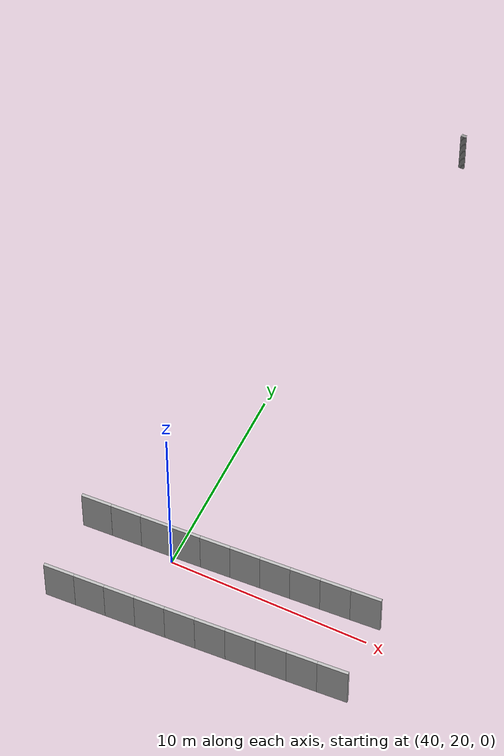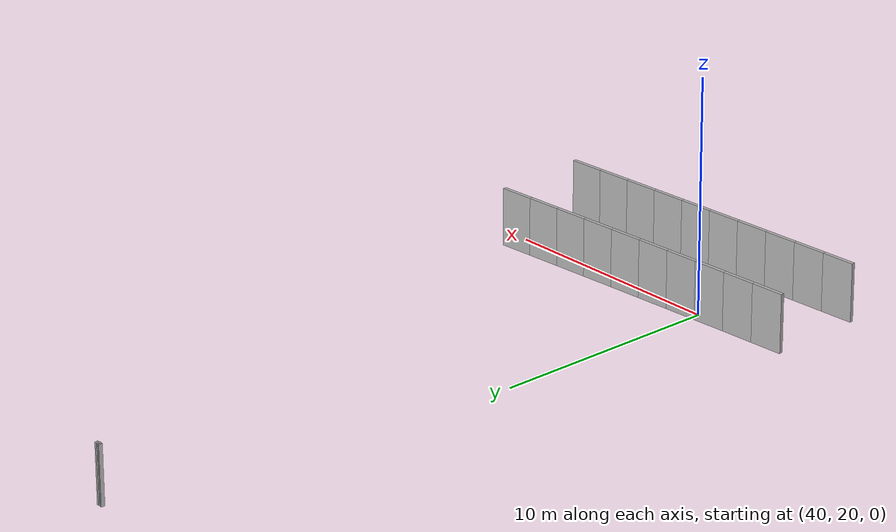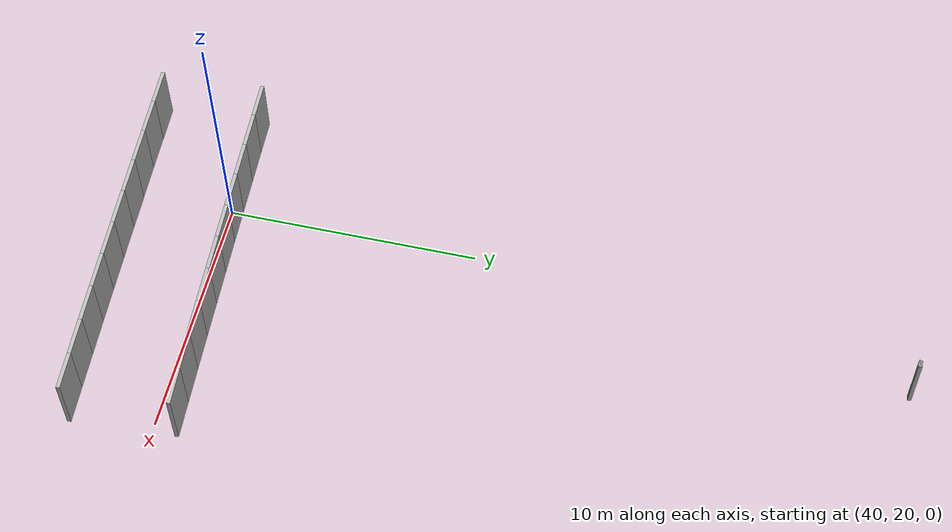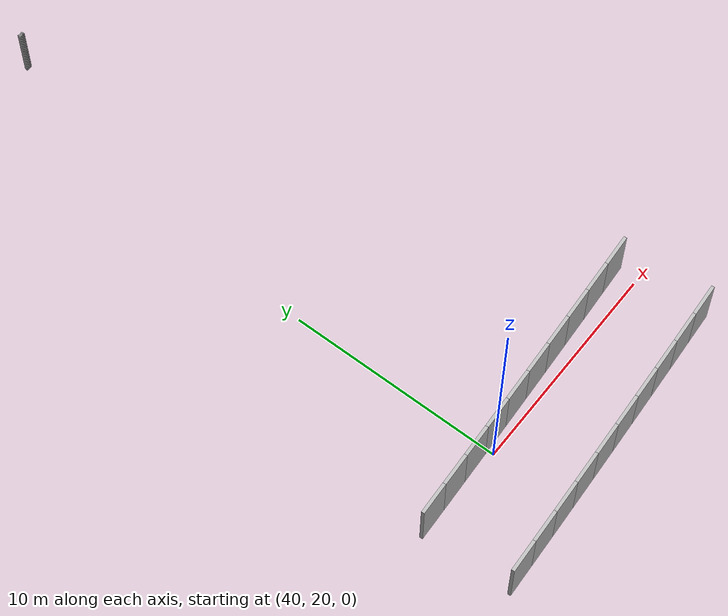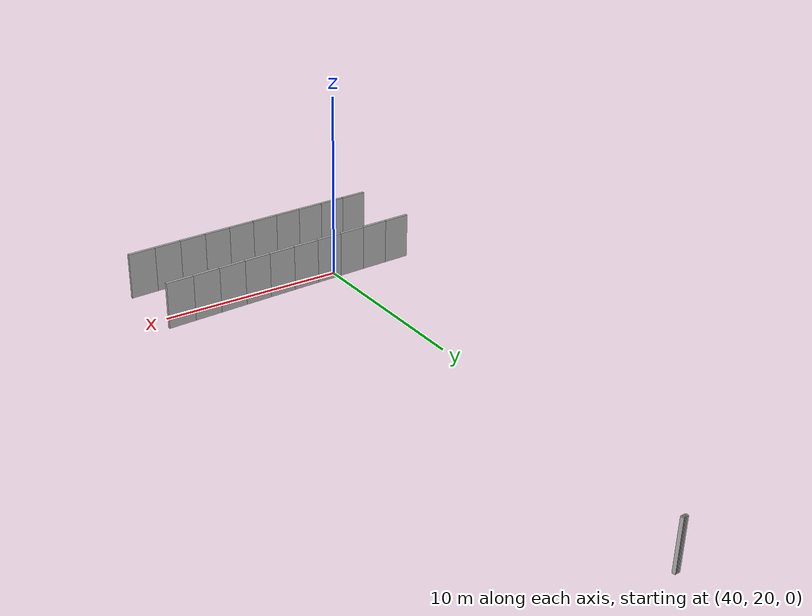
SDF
<sdf version="1.6">
 <model name="sps_2603">
  <static>1</static>
  <allow_auto_disable>0</allow_auto_disable>
  <link name="Wall722">
   <collision name="collision"><geometry><box><size>0.0452689 0.15 2.5</size></box></geometry></collision>
   <visual name="visual">
    <geometry><box><size>0.0452689 0.15 2.5</size></box></geometry>
    <transparency>0.0</transparency>
   </visual>
   <pose>42.7014 47.448 1.25 0 0 -2.92278</pose>
  </link>
  <link name="Wall723">
   <collision name="collision"><geometry><box><size>0.0454156 0.15 2.5</size></box></geometry></collision>
   <visual name="visual">
    <geometry><box><size>0.0454156 0.15 2.5</size></box></geometry>
    <transparency>0.0</transparency>
   </visual>
   <pose>42.6568 47.4402 1.25 0 0 -3.01357</pose>
  </link>
  <link name="Wall724">
   <collision name="collision"><geometry><box><size>0.0454521 0.15 2.5</size></box></geometry></collision>
   <visual name="visual">
    <geometry><box><size>0.0454521 0.15 2.5</size></box></geometry>
    <transparency>0.0</transparency>
   </visual>
   <pose>42.6115 47.4363 1.25 0 0 -3.09861</pose>
  </link>
  <link name="Wall725">
   <collision name="collision"><geometry><box><size>0.0452082 0.15 2.5</size></box></geometry></collision>
   <visual name="visual">
    <geometry><box><size>0.0452082 0.15 2.5</size></box></geometry>
    <transparency>0.0</transparency>
   </visual>
   <pose>42.5662 47.4363 1.25 0 -0 3.09838</pose>
  </link>
  <link name="Wall726">
   <collision name="collision"><geometry><box><size>0.0453551 0.15 2.5</size></box></geometry></collision>
   <visual name="visual">
    <geometry><box><size>0.0453551 0.15 2.5</size></box></geometry>
    <transparency>0.0</transparency>
   </visual>
   <pose>42.5212 47.4402 1.25 0 -0 3.0134</pose>
  </link>
  <link name="Wall727">
   <collision name="collision"><geometry><box><size>0.0455471 0.15 2.5</size></box></geometry></collision>
   <visual name="visual">
    <geometry><box><size>0.0455471 0.15 2.5</size></box></geometry>
    <transparency>0.0</transparency>
   </visual>
   <pose>42.4765 47.4481 1.25 0 -0 2.92002</pose>
  </link>
  <link name="Wall3695">
   <collision name="collision"><geometry><box><size>1.49657 0.15 2.5</size></box></geometry></collision>
   <visual name="visual">
    <geometry><box><size>1.49657 0.15 2.5</size></box></geometry>
    <transparency>0.0</transparency>
   </visual>
   <pose>36.0873 20.156 1.25 0 -0 0.0485104</pose>
  </link>
  <link name="Wall3696">
   <collision name="collision"><geometry><box><size>1.49644 0.15 2.5</size></box></geometry></collision>
   <visual name="visual">
    <geometry><box><size>1.49644 0.15 2.5</size></box></geometry>
    <transparency>0.0</transparency>
   </visual>
   <pose>37.582 20.2297 1.25 0 -0 0.0500256</pose>
  </link>
  <link name="Wall3697">
   <collision name="collision"><geometry><box><size>1.49638 0.15 2.5</size></box></geometry></collision>
   <visual name="visual">
    <geometry><box><size>1.49638 0.15 2.5</size></box></geometry>
    <transparency>0.0</transparency>
   </visual>
   <pose>39.0764 20.3057 1.25 0 -0 0.0516205</pose>
  </link>
  <link name="Wall3698">
   <collision name="collision"><geometry><box><size>1.49656 0.15 2.5</size></box></geometry></collision>
   <visual name="visual">
    <geometry><box><size>1.49656 0.15 2.5</size></box></geometry>
    <transparency>0.0</transparency>
   </visual>
   <pose>40.5709 20.3841 1.25 0 -0 0.0532068</pose>
  </link>
  <link name="Wall3699">
   <collision name="collision"><geometry><box><size>1.49663 0.15 2.5</size></box></geometry></collision>
   <visual name="visual">
    <geometry><box><size>1.49663 0.15 2.5</size></box></geometry>
    <transparency>0.0</transparency>
   </visual>
   <pose>42.0653 20.4649 1.25 0 -0 0.0547972</pose>
  </link>
  <link name="Wall3700">
   <collision name="collision"><geometry><box><size>1.49639 0.15 2.5</size></box></geometry></collision>
   <visual name="visual">
    <geometry><box><size>1.49639 0.15 2.5</size></box></geometry>
    <transparency>0.0</transparency>
   </visual>
   <pose>43.5595 20.548 1.25 0 -0 0.0563175</pose>
  </link>
  <link name="Wall3701">
   <collision name="collision"><geometry><box><size>1.49648 0.15 2.5</size></box></geometry></collision>
   <visual name="visual">
    <geometry><box><size>1.49648 0.15 2.5</size></box></geometry>
    <transparency>0.0</transparency>
   </visual>
   <pose>45.0535 20.6335 1.25 0 -0 0.0580301</pose>
  </link>
  <link name="Wall3702">
   <collision name="collision"><geometry><box><size>1.49648 0.15 2.5</size></box></geometry></collision>
   <visual name="visual">
    <geometry><box><size>1.49648 0.15 2.5</size></box></geometry>
    <transparency>0.0</transparency>
   </visual>
   <pose>46.5474 20.7214 1.25 0 -0 0.0595007</pose>
  </link>
  <link name="Wall3703">
   <collision name="collision"><geometry><box><size>1.49676 0.15 2.5</size></box></geometry></collision>
   <visual name="visual">
    <geometry><box><size>1.49676 0.15 2.5</size></box></geometry>
    <transparency>0.0</transparency>
   </visual>
   <pose>48.0413 20.8117 1.25 0 -0 0.0612462</pose>
  </link>
  <link name="Wall3704">
   <collision name="collision"><geometry><box><size>1.49635 0.15 2.5</size></box></geometry></collision>
   <visual name="visual">
    <geometry><box><size>1.49635 0.15 2.5</size></box></geometry>
    <transparency>0.0</transparency>
   </visual>
   <pose>49.5349 20.9044 1.25 0 -0 0.0627343</pose>
  </link>
  <link name="Wall7470">
   <collision name="collision"><geometry><box><size>1.50317 0.15 2.5</size></box></geometry></collision>
   <visual name="visual">
    <geometry><box><size>1.50317 0.15 2.5</size></box></geometry>
    <transparency>0.0</transparency>
   </visual>
   <pose>36.2909 16.0205 1.25 0 -0 0.0484599</pose>
  </link>
  <link name="Wall7471">
   <collision name="collision"><geometry><box><size>1.5031 0.15 2.5</size></box></geometry></collision>
   <visual name="visual">
    <geometry><box><size>1.5031 0.15 2.5</size></box></geometry>
    <transparency>0.0</transparency>
   </visual>
   <pose>37.7923 16.0945 1.25 0 -0 0.0500476</pose>
  </link>
  <link name="Wall7472">
   <collision name="collision"><geometry><box><size>1.50298 0.15 2.5</size></box></geometry></collision>
   <visual name="visual">
    <geometry><box><size>1.50298 0.15 2.5</size></box></geometry>
    <transparency>0.0</transparency>
   </visual>
   <pose>39.2934 16.1709 1.25 0 -0 0.0516375</pose>
  </link>
  <link name="Wall7473">
   <collision name="collision"><geometry><box><size>1.50317 0.15 2.5</size></box></geometry></collision>
   <visual name="visual">
    <geometry><box><size>1.50317 0.15 2.5</size></box></geometry>
    <transparency>0.0</transparency>
   </visual>
   <pose>40.7944 16.2497 1.25 0 -0 0.0532574</pose>
  </link>
  <link name="Wall7474">
   <collision name="collision"><geometry><box><size>1.50304 0.15 2.5</size></box></geometry></collision>
   <visual name="visual">
    <geometry><box><size>1.50304 0.15 2.5</size></box></geometry>
    <transparency>0.0</transparency>
   </visual>
   <pose>42.2953 16.3308 1.25 0 -0 0.0547259</pose>
  </link>
  <link name="Wall7475">
   <collision name="collision"><geometry><box><size>1.50294 0.15 2.5</size></box></geometry></collision>
   <visual name="visual">
    <geometry><box><size>1.50294 0.15 2.5</size></box></geometry>
    <transparency>0.0</transparency>
   </visual>
   <pose>43.796 16.4143 1.25 0 -0 0.0564379</pose>
  </link>
  <link name="Wall7476">
   <collision name="collision"><geometry><box><size>1.50313 0.15 2.5</size></box></geometry></collision>
   <visual name="visual">
    <geometry><box><size>1.50313 0.15 2.5</size></box></geometry>
    <transparency>0.0</transparency>
   </visual>
   <pose>45.2965 16.5002 1.25 0 -0 0.0579356</pose>
  </link>
  <link name="Wall7477">
   <collision name="collision"><geometry><box><size>1.50328 0.15 2.5</size></box></geometry></collision>
   <visual name="visual">
    <geometry><box><size>1.50328 0.15 2.5</size></box></geometry>
    <transparency>0.0</transparency>
   </visual>
   <pose>46.7971 16.5885 1.25 0 -0 0.059638</pose>
  </link>
  <link name="Wall7478">
   <collision name="collision"><geometry><box><size>1.503 0.15 2.5</size></box></geometry></collision>
   <visual name="visual">
    <geometry><box><size>1.503 0.15 2.5</size></box></geometry>
    <transparency>0.0</transparency>
   </visual>
   <pose>48.2975 16.6793 1.25 0 -0 0.0612358</pose>
  </link>
  <link name="Wall7479">
   <collision name="collision"><geometry><box><size>1.5032 0.15 2.5</size></box></geometry></collision>
   <visual name="visual">
    <geometry><box><size>1.5032 0.15 2.5</size></box></geometry>
    <transparency>0.0</transparency>
   </visual>
   <pose>49.7978 16.7724 1.25 0 -0 0.0626924</pose>
  </link>
 </model>
</sdf>
